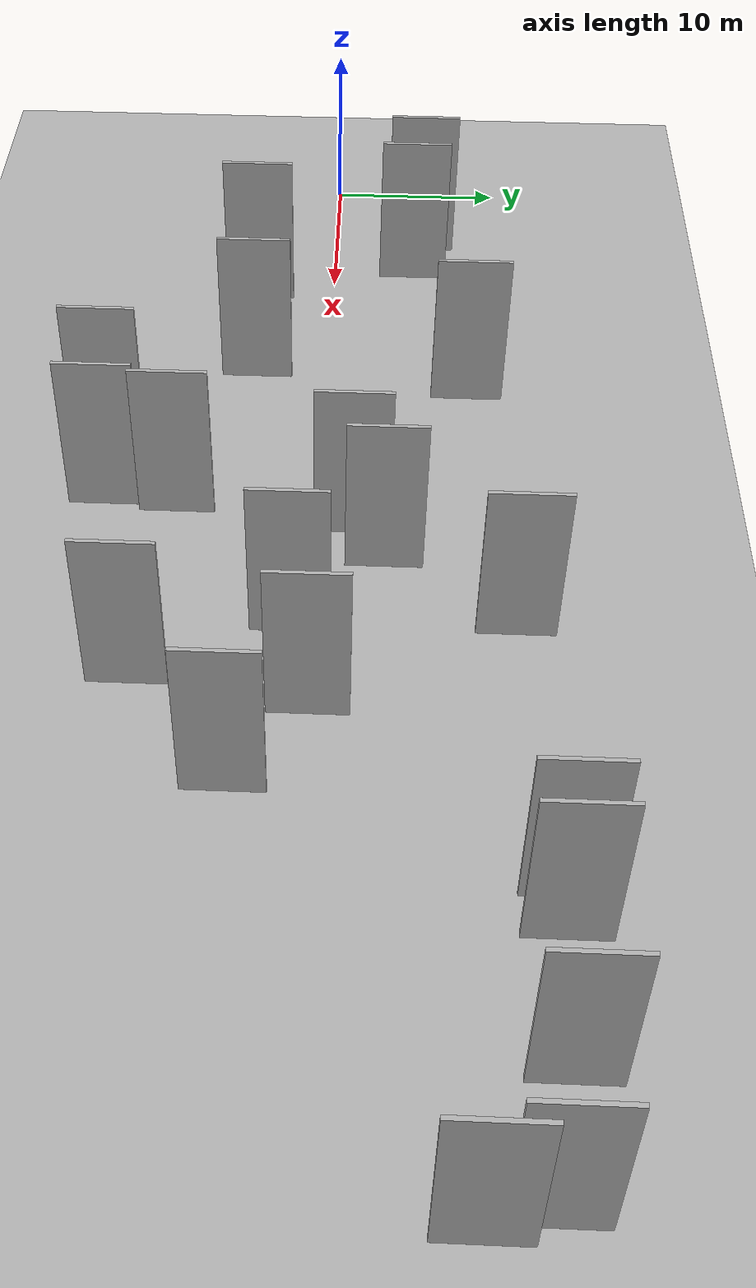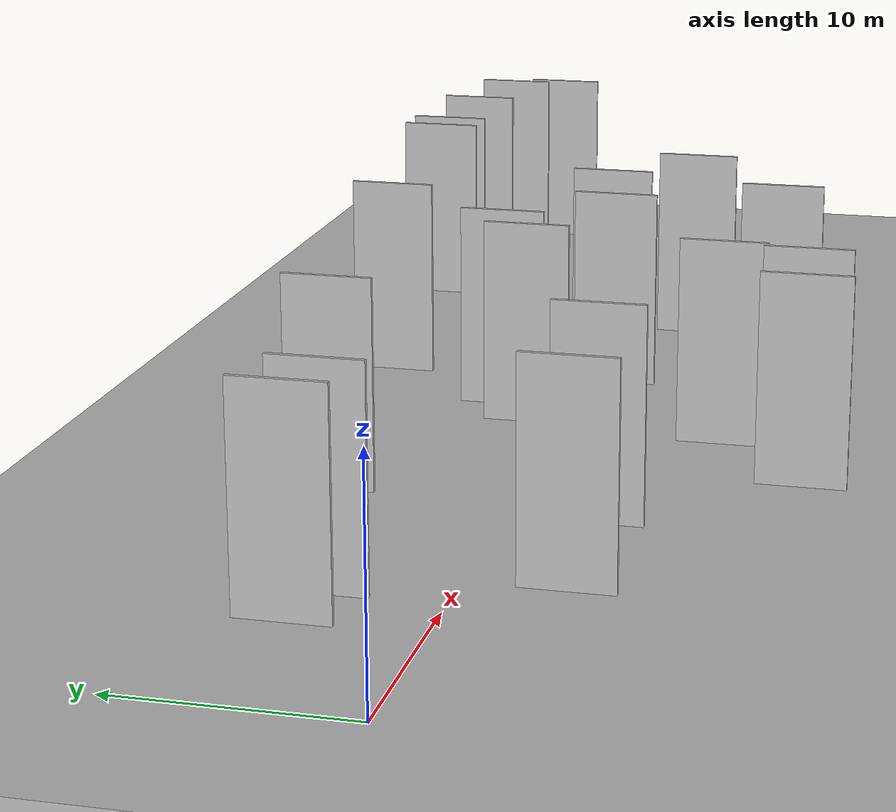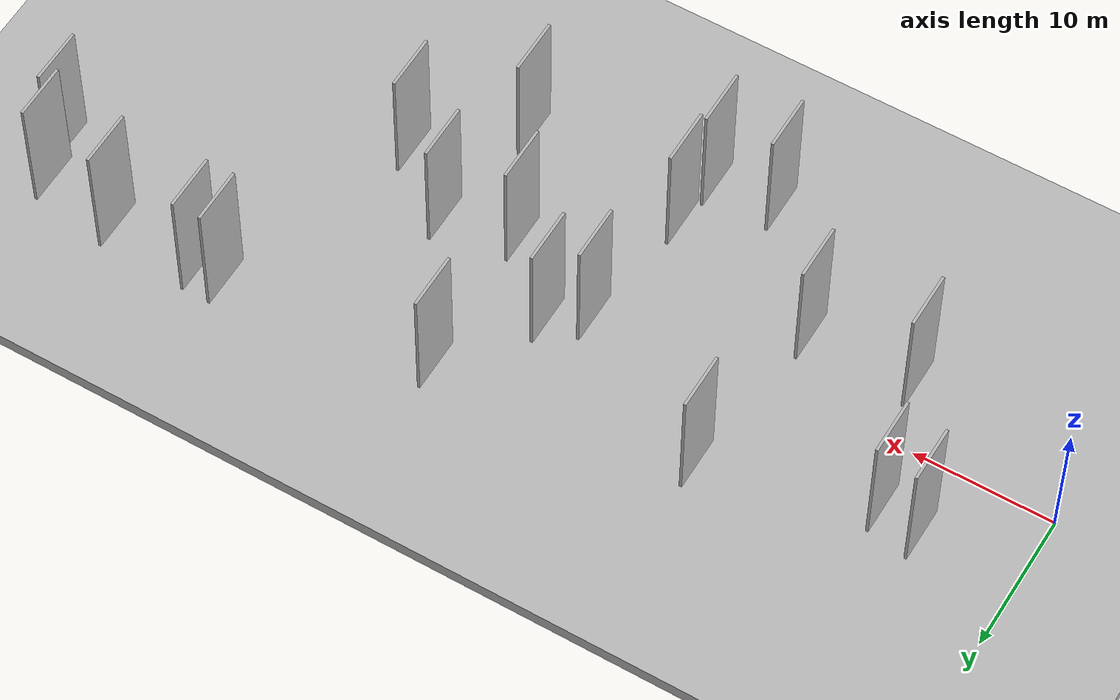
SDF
<?xml version="1.0" encoding="utf-8"?>

<sdf version="1.6">

   <world name="default">

      <gui fullscreen="0">

         <camera name="user_camera">

            <pose>-15 0 4.57585 0 0 0</pose>

            <view_controller>orbit</view_controller>

         </camera>

      </gui>

      <scene>

         <sky>

           <clouds>

             <speed>12</speed>

           </clouds>

         </sky>

         <ambient>0.4 0.4 0.4 1</ambient>

         <background>0.7 0.7 0.7 1</background>

         <shadows>1</shadows>

      </scene>

      <gravity>0 0 -9.8066</gravity>

      <magnetic_field>6e-06 2.3e-05 -4.2e-05</magnetic_field>

      <physics default="0" name="default_physics" type="ode">

         <ode>

            <solver>

               <type>quick</type>

               <iters>10</iters>

               <sor>1.0</sor>

               <use_dynamic_moi_rescaling>0</use_dynamic_moi_rescaling>

            </solver>

            <constraints>

               <cfm>0</cfm>

               <erp>0.2</erp>

               <contact_max_correcting_vel>100</contact_max_correcting_vel>

               <contact_surface_layer>0.001</contact_surface_layer>

            </constraints>

         </ode>

         <max_step_size>0.004</max_step_size>

         <real_time_factor>1</real_time_factor>

         <real_time_update_rate>250</real_time_update_rate>

      </physics>

      <light name="sun" type="directional">

         <cast_shadows>1</cast_shadows>

         <pose>0 0 10 0 0 0</pose>

         <diffuse>0.8 0.8 0.8 1</diffuse>

         <specular>0.2 0.2 0.2 1</specular>

         <attenuation>

            <range>1000</range>

            <constant>0.9</constant>

            <linear>0.01</linear>

            <quadratic>0.001</quadratic>

         </attenuation>

         <direction>-0.5 0.1 -0.9</direction>

      </light>

      <include>

         <name>ground_plane_1</name>

         <uri>model://HANNAS_ground_plane</uri>

         <pose>0 0 0  0 0 0</pose>

      </include>

      <include>

         <name>ground_plane_2</name>

         <uri>model://HANNAS_ground_plane</uri>

         <pose>100 0 0  0 0 0</pose>

      </include>

      <model name="HANNAS_wall_1">

         <static>1</static>

         <pose frame="">39.3201 -1.1113 0.0 0.000000 0.000000 1.570796</pose>

         <link name="link">

            <pose frame="">0 0 5.00 0 0 0</pose>

            <collision name="collision">

               <geometry>

                  <box>

                     <size>4.00 0.2 10.00</size>

                  </box>

               </geometry>

               <max_contacts>10</max_contacts>

               <surface>

                  <contact>

                     <ode/>

                  </contact>

                  <bounce/>

                  <friction>

                     <torsional>

                        <ode/>

                     </torsional>

                     <ode/>

                  </friction>

               </surface>

            </collision>

            <visual name="visual">

               <cast_shadows>0</cast_shadows>

               <geometry>

                  <box>

                     <size>4.00 0.2 10.00</size>

                  </box>

               </geometry>

               <material>

                  <script>

                     <uri>model://HANNAS_wall/materials/scripts</uri>

                     <uri>model://HANNAS_wall/materials/textures</uri>

                     <name>vrc/HANNAS_wall</name>

                  </script>

               </material>

            </visual>

            <self_collide>0</self_collide>

            <enable_wind>0</enable_wind>

            <kinematic>0</kinematic>

         </link>

      </model>

      <model name="HANNAS_wall_2">

         <static>1</static>

         <pose frame="">21.1758 7.9004 0.0 0.000000 0.000000 1.570796</pose>

         <link name="link">

            <pose frame="">0 0 5.00 0 0 0</pose>

            <collision name="collision">

               <geometry>

                  <box>

                     <size>4.00 0.2 10.00</size>

                  </box>

               </geometry>

               <max_contacts>10</max_contacts>

               <surface>

                  <contact>

                     <ode/>

                  </contact>

                  <bounce/>

                  <friction>

                     <torsional>

                        <ode/>

                     </torsional>

                     <ode/>

                  </friction>

               </surface>

            </collision>

            <visual name="visual">

               <cast_shadows>0</cast_shadows>

               <geometry>

                  <box>

                     <size>4.00 0.2 10.00</size>

                  </box>

               </geometry>

               <material>

                  <script>

                     <uri>model://HANNAS_wall/materials/scripts</uri>

                     <uri>model://HANNAS_wall/materials/textures</uri>

                     <name>vrc/HANNAS_wall</name>

                  </script>

               </material>

            </visual>

            <self_collide>0</self_collide>

            <enable_wind>0</enable_wind>

            <kinematic>0</kinematic>

         </link>

      </model>

      <model name="HANNAS_wall_3">

         <static>1</static>

         <pose frame="">34.6801 3.4455 0.0 0.000000 0.000000 1.570796</pose>

         <link name="link">

            <pose frame="">0 0 5.00 0 0 0</pose>

            <collision name="collision">

               <geometry>

                  <box>

                     <size>4.00 0.2 10.00</size>

                  </box>

               </geometry>

               <max_contacts>10</max_contacts>

               <surface>

                  <contact>

                     <ode/>

                  </contact>

                  <bounce/>

                  <friction>

                     <torsional>

                        <ode/>

                     </torsional>

                     <ode/>

                  </friction>

               </surface>

            </collision>

            <visual name="visual">

               <cast_shadows>0</cast_shadows>

               <geometry>

                  <box>

                     <size>4.00 0.2 10.00</size>

                  </box>

               </geometry>

               <material>

                  <script>

                     <uri>model://HANNAS_wall/materials/scripts</uri>

                     <uri>model://HANNAS_wall/materials/textures</uri>

                     <name>vrc/HANNAS_wall</name>

                  </script>

               </material>

            </visual>

            <self_collide>0</self_collide>

            <enable_wind>0</enable_wind>

            <kinematic>0</kinematic>

         </link>

      </model>

      <model name="HANNAS_wall_4">

         <static>1</static>

         <pose frame="">42.9795 -8.7372 0.0 0.000000 0.000000 1.570796</pose>

         <link name="link">

            <pose frame="">0 0 5.00 0 0 0</pose>

            <collision name="collision">

               <geometry>

                  <box>

                     <size>4.00 0.2 10.00</size>

                  </box>

               </geometry>

               <max_contacts>10</max_contacts>

               <surface>

                  <contact>

                     <ode/>

                  </contact>

                  <bounce/>

                  <friction>

                     <torsional>

                        <ode/>

                     </torsional>

                     <ode/>

                  </friction>

               </surface>

            </collision>

            <visual name="visual">

               <cast_shadows>0</cast_shadows>

               <geometry>

                  <box>

                     <size>4.00 0.2 10.00</size>

                  </box>

               </geometry>

               <material>

                  <script>

                     <uri>model://HANNAS_wall/materials/scripts</uri>

                     <uri>model://HANNAS_wall/materials/textures</uri>

                     <name>vrc/HANNAS_wall</name>

                  </script>

               </material>

            </visual>

            <self_collide>0</self_collide>

            <enable_wind>0</enable_wind>

            <kinematic>0</kinematic>

         </link>

      </model>

      <model name="HANNAS_wall_5">

         <static>1</static>

         <pose frame="">19.6572 -4.1081 0.0 0.000000 0.000000 1.570796</pose>

         <link name="link">

            <pose frame="">0 0 5.00 0 0 0</pose>

            <collision name="collision">

               <geometry>

                  <box>

                     <size>4.00 0.2 10.00</size>

                  </box>

               </geometry>

               <max_contacts>10</max_contacts>

               <surface>

                  <contact>

                     <ode/>

                  </contact>

                  <bounce/>

                  <friction>

                     <torsional>

                        <ode/>

                     </torsional>

                     <ode/>

                  </friction>

               </surface>

            </collision>

            <visual name="visual">

               <cast_shadows>0</cast_shadows>

               <geometry>

                  <box>

                     <size>4.00 0.2 10.00</size>

                  </box>

               </geometry>

               <material>

                  <script>

                     <uri>model://HANNAS_wall/materials/scripts</uri>

                     <uri>model://HANNAS_wall/materials/textures</uri>

                     <name>vrc/HANNAS_wall</name>

                  </script>

               </material>

            </visual>

            <self_collide>0</self_collide>

            <enable_wind>0</enable_wind>

            <kinematic>0</kinematic>

         </link>

      </model>

      <model name="HANNAS_wall_6">

         <static>1</static>

         <pose frame="">6.6770 5.2937 0.0 0.000000 0.000000 1.570796</pose>

         <link name="link">

            <pose frame="">0 0 5.00 0 0 0</pose>

            <collision name="collision">

               <geometry>

                  <box>

                     <size>4.00 0.2 10.00</size>

                  </box>

               </geometry>

               <max_contacts>10</max_contacts>

               <surface>

                  <contact>

                     <ode/>

                  </contact>

                  <bounce/>

                  <friction>

                     <torsional>

                        <ode/>

                     </torsional>

                     <ode/>

                  </friction>

               </surface>

            </collision>

            <visual name="visual">

               <cast_shadows>0</cast_shadows>

               <geometry>

                  <box>

                     <size>4.00 0.2 10.00</size>

                  </box>

               </geometry>

               <material>

                  <script>

                     <uri>model://HANNAS_wall/materials/scripts</uri>

                     <uri>model://HANNAS_wall/materials/textures</uri>

                     <name>vrc/HANNAS_wall</name>

                  </script>

               </material>

            </visual>

            <self_collide>0</self_collide>

            <enable_wind>0</enable_wind>

            <kinematic>0</kinematic>

         </link>

      </model>

      <model name="HANNAS_wall_7">

         <static>1</static>

         <pose frame="">56.0255 11.4778 0.0 0.000000 0.000000 1.570796</pose>

         <link name="link">

            <pose frame="">0 0 5.00 0 0 0</pose>

            <collision name="collision">

               <geometry>

                  <box>

                     <size>4.00 0.2 10.00</size>

                  </box>

               </geometry>

               <max_contacts>10</max_contacts>

               <surface>

                  <contact>

                     <ode/>

                  </contact>

                  <bounce/>

                  <friction>

                     <torsional>

                        <ode/>

                     </torsional>

                     <ode/>

                  </friction>

               </surface>

            </collision>

            <visual name="visual">

               <cast_shadows>0</cast_shadows>

               <geometry>

                  <box>

                     <size>4.00 0.2 10.00</size>

                  </box>

               </geometry>

               <material>

                  <script>

                     <uri>model://HANNAS_wall/materials/scripts</uri>

                     <uri>model://HANNAS_wall/materials/textures</uri>

                     <name>vrc/HANNAS_wall</name>

                  </script>

               </material>

            </visual>

            <self_collide>0</self_collide>

            <enable_wind>0</enable_wind>

            <kinematic>0</kinematic>

         </link>

      </model>

      <model name="HANNAS_wall_8">

         <static>1</static>

         <pose frame="">9.6455 4.7786 0.0 0.000000 0.000000 1.570796</pose>

         <link name="link">

            <pose frame="">0 0 5.00 0 0 0</pose>

            <collision name="collision">

               <geometry>

                  <box>

                     <size>4.00 0.2 10.00</size>

                  </box>

               </geometry>

               <max_contacts>10</max_contacts>

               <surface>

                  <contact>

                     <ode/>

                  </contact>

                  <bounce/>

                  <friction>

                     <torsional>

                        <ode/>

                     </torsional>

                     <ode/>

                  </friction>

               </surface>

            </collision>

            <visual name="visual">

               <cast_shadows>0</cast_shadows>

               <geometry>

                  <box>

                     <size>4.00 0.2 10.00</size>

                  </box>

               </geometry>

               <material>

                  <script>

                     <uri>model://HANNAS_wall/materials/scripts</uri>

                     <uri>model://HANNAS_wall/materials/textures</uri>

                     <name>vrc/HANNAS_wall</name>

                  </script>

               </material>

            </visual>

            <self_collide>0</self_collide>

            <enable_wind>0</enable_wind>

            <kinematic>0</kinematic>

         </link>

      </model>

      <model name="HANNAS_wall_9">

         <static>1</static>

         <pose frame="">12.0997 -4.4254 0.0 0.000000 0.000000 1.570796</pose>

         <link name="link">

            <pose frame="">0 0 5.00 0 0 0</pose>

            <collision name="collision">

               <geometry>

                  <box>

                     <size>4.00 0.2 10.00</size>

                  </box>

               </geometry>

               <max_contacts>10</max_contacts>

               <surface>

                  <contact>

                     <ode/>

                  </contact>

                  <bounce/>

                  <friction>

                     <torsional>

                        <ode/>

                     </torsional>

                     <ode/>

                  </friction>

               </surface>

            </collision>

            <visual name="visual">

               <cast_shadows>0</cast_shadows>

               <geometry>

                  <box>

                     <size>4.00 0.2 10.00</size>

                  </box>

               </geometry>

               <material>

                  <script>

                     <uri>model://HANNAS_wall/materials/scripts</uri>

                     <uri>model://HANNAS_wall/materials/textures</uri>

                     <name>vrc/HANNAS_wall</name>

                  </script>

               </material>

            </visual>

            <self_collide>0</self_collide>

            <enable_wind>0</enable_wind>

            <kinematic>0</kinematic>

         </link>

      </model>

      <model name="HANNAS_wall_10">

         <static>1</static>

         <pose frame="">30.6636 -11.3826 0.0 0.000000 0.000000 1.570796</pose>

         <link name="link">

            <pose frame="">0 0 5.00 0 0 0</pose>

            <collision name="collision">

               <geometry>

                  <box>

                     <size>4.00 0.2 10.00</size>

                  </box>

               </geometry>

               <max_contacts>10</max_contacts>

               <surface>

                  <contact>

                     <ode/>

                  </contact>

                  <bounce/>

                  <friction>

                     <torsional>

                        <ode/>

                     </torsional>

                     <ode/>

                  </friction>

               </surface>

            </collision>

            <visual name="visual">

               <cast_shadows>0</cast_shadows>

               <geometry>

                  <box>

                     <size>4.00 0.2 10.00</size>

                  </box>

               </geometry>

               <material>

                  <script>

                     <uri>model://HANNAS_wall/materials/scripts</uri>

                     <uri>model://HANNAS_wall/materials/textures</uri>

                     <name>vrc/HANNAS_wall</name>

                  </script>

               </material>

            </visual>

            <self_collide>0</self_collide>

            <enable_wind>0</enable_wind>

            <kinematic>0</kinematic>

         </link>

      </model>

      <model name="HANNAS_wall_11">

         <static>1</static>

         <pose frame="">44.4753 0.0213 0.0 0.000000 0.000000 1.570796</pose>

         <link name="link">

            <pose frame="">0 0 5.00 0 0 0</pose>

            <collision name="collision">

               <geometry>

                  <box>

                     <size>4.00 0.2 10.00</size>

                  </box>

               </geometry>

               <max_contacts>10</max_contacts>

               <surface>

                  <contact>

                     <ode/>

                  </contact>

                  <bounce/>

                  <friction>

                     <torsional>

                        <ode/>

                     </torsional>

                     <ode/>

                  </friction>

               </surface>

            </collision>

            <visual name="visual">

               <cast_shadows>0</cast_shadows>

               <geometry>

                  <box>

                     <size>4.00 0.2 10.00</size>

                  </box>

               </geometry>

               <material>

                  <script>

                     <uri>model://HANNAS_wall/materials/scripts</uri>

                     <uri>model://HANNAS_wall/materials/textures</uri>

                     <name>vrc/HANNAS_wall</name>

                  </script>

               </material>

            </visual>

            <self_collide>0</self_collide>

            <enable_wind>0</enable_wind>

            <kinematic>0</kinematic>

         </link>

      </model>

      <model name="HANNAS_wall_12">

         <static>1</static>

         <pose frame="">26.1007 -11.8129 0.0 0.000000 0.000000 1.570796</pose>

         <link name="link">

            <pose frame="">0 0 5.00 0 0 0</pose>

            <collision name="collision">

               <geometry>

                  <box>

                     <size>4.00 0.2 10.00</size>

                  </box>

               </geometry>

               <max_contacts>10</max_contacts>

               <surface>

                  <contact>

                     <ode/>

                  </contact>

                  <bounce/>

                  <friction>

                     <torsional>

                        <ode/>

                     </torsional>

                     <ode/>

                  </friction>

               </surface>

            </collision>

            <visual name="visual">

               <cast_shadows>0</cast_shadows>

               <geometry>

                  <box>

                     <size>4.00 0.2 10.00</size>

                  </box>

               </geometry>

               <material>

                  <script>

                     <uri>model://HANNAS_wall/materials/scripts</uri>

                     <uri>model://HANNAS_wall/materials/textures</uri>

                     <name>vrc/HANNAS_wall</name>

                  </script>

               </material>

            </visual>

            <self_collide>0</self_collide>

            <enable_wind>0</enable_wind>

            <kinematic>0</kinematic>

         </link>

      </model>

      <model name="HANNAS_wall_13">

         <static>1</static>

         <pose frame="">49.0920 -3.5994 0.0 0.000000 0.000000 1.570796</pose>

         <link name="link">

            <pose frame="">0 0 5.00 0 0 0</pose>

            <collision name="collision">

               <geometry>

                  <box>

                     <size>4.00 0.2 10.00</size>

                  </box>

               </geometry>

               <max_contacts>10</max_contacts>

               <surface>

                  <contact>

                     <ode/>

                  </contact>

                  <bounce/>

                  <friction>

                     <torsional>

                        <ode/>

                     </torsional>

                     <ode/>

                  </friction>

               </surface>

            </collision>

            <visual name="visual">

               <cast_shadows>0</cast_shadows>

               <geometry>

                  <box>

                     <size>4.00 0.2 10.00</size>

                  </box>

               </geometry>

               <material>

                  <script>

                     <uri>model://HANNAS_wall/materials/scripts</uri>

                     <uri>model://HANNAS_wall/materials/textures</uri>

                     <name>vrc/HANNAS_wall</name>

                  </script>

               </material>

            </visual>

            <self_collide>0</self_collide>

            <enable_wind>0</enable_wind>

            <kinematic>0</kinematic>

         </link>

      </model>

      <model name="HANNAS_wall_14">

         <static>1</static>

         <pose frame="">68.7990 7.5972 0.0 0.000000 0.000000 1.570796</pose>

         <link name="link">

            <pose frame="">0 0 5.00 0 0 0</pose>

            <collision name="collision">

               <geometry>

                  <box>

                     <size>4.00 0.2 10.00</size>

                  </box>

               </geometry>

               <max_contacts>10</max_contacts>

               <surface>

                  <contact>

                     <ode/>

                  </contact>

                  <bounce/>

                  <friction>

                     <torsional>

                        <ode/>

                     </torsional>

                     <ode/>

                  </friction>

               </surface>

            </collision>

            <visual name="visual">

               <cast_shadows>0</cast_shadows>

               <geometry>

                  <box>

                     <size>4.00 0.2 10.00</size>

                  </box>

               </geometry>

               <material>

                  <script>

                     <uri>model://HANNAS_wall/materials/scripts</uri>

                     <uri>model://HANNAS_wall/materials/textures</uri>

                     <name>vrc/HANNAS_wall</name>

                  </script>

               </material>

            </visual>

            <self_collide>0</self_collide>

            <enable_wind>0</enable_wind>

            <kinematic>0</kinematic>

         </link>

      </model>

      <model name="HANNAS_wall_15">

         <static>1</static>

         <pose frame="">32.2501 1.7436 0.0 0.000000 0.000000 1.570796</pose>

         <link name="link">

            <pose frame="">0 0 5.00 0 0 0</pose>

            <collision name="collision">

               <geometry>

                  <box>

                     <size>4.00 0.2 10.00</size>

                  </box>

               </geometry>

               <max_contacts>10</max_contacts>

               <surface>

                  <contact>

                     <ode/>

                  </contact>

                  <bounce/>

                  <friction>

                     <torsional>

                        <ode/>

                     </torsional>

                     <ode/>

                  </friction>

               </surface>

            </collision>

            <visual name="visual">

               <cast_shadows>0</cast_shadows>

               <geometry>

                  <box>

                     <size>4.00 0.2 10.00</size>

                  </box>

               </geometry>

               <material>

                  <script>

                     <uri>model://HANNAS_wall/materials/scripts</uri>

                     <uri>model://HANNAS_wall/materials/textures</uri>

                     <name>vrc/HANNAS_wall</name>

                  </script>

               </material>

            </visual>

            <self_collide>0</self_collide>

            <enable_wind>0</enable_wind>

            <kinematic>0</kinematic>

         </link>

      </model>

      <model name="HANNAS_wall_16">

         <static>1</static>

         <pose frame="">68.0790 10.4414 0.0 0.000000 0.000000 1.570796</pose>

         <link name="link">

            <pose frame="">0 0 5.00 0 0 0</pose>

            <collision name="collision">

               <geometry>

                  <box>

                     <size>4.00 0.2 10.00</size>

                  </box>

               </geometry>

               <max_contacts>10</max_contacts>

               <surface>

                  <contact>

                     <ode/>

                  </contact>

                  <bounce/>

                  <friction>

                     <torsional>

                        <ode/>

                     </torsional>

                     <ode/>

                  </friction>

               </surface>

            </collision>

            <visual name="visual">

               <cast_shadows>0</cast_shadows>

               <geometry>

                  <box>

                     <size>4.00 0.2 10.00</size>

                  </box>

               </geometry>

               <material>

                  <script>

                     <uri>model://HANNAS_wall/materials/scripts</uri>

                     <uri>model://HANNAS_wall/materials/textures</uri>

                     <name>vrc/HANNAS_wall</name>

                  </script>

               </material>

            </visual>

            <self_collide>0</self_collide>

            <enable_wind>0</enable_wind>

            <kinematic>0</kinematic>

         </link>

      </model>

      <model name="HANNAS_wall_17">

         <static>1</static>

         <pose frame="">39.0511 10.0274 0.0 0.000000 0.000000 1.570796</pose>

         <link name="link">

            <pose frame="">0 0 5.00 0 0 0</pose>

            <collision name="collision">

               <geometry>

                  <box>

                     <size>4.00 0.2 10.00</size>

                  </box>

               </geometry>

               <max_contacts>10</max_contacts>

               <surface>

                  <contact>

                     <ode/>

                  </contact>

                  <bounce/>

                  <friction>

                     <torsional>

                        <ode/>

                     </torsional>

                     <ode/>

                  </friction>

               </surface>

            </collision>

            <visual name="visual">

               <cast_shadows>0</cast_shadows>

               <geometry>

                  <box>

                     <size>4.00 0.2 10.00</size>

                  </box>

               </geometry>

               <material>

                  <script>

                     <uri>model://HANNAS_wall/materials/scripts</uri>

                     <uri>model://HANNAS_wall/materials/textures</uri>

                     <name>vrc/HANNAS_wall</name>

                  </script>

               </material>

            </visual>

            <self_collide>0</self_collide>

            <enable_wind>0</enable_wind>

            <kinematic>0</kinematic>

         </link>

      </model>

      <model name="HANNAS_wall_18">

         <static>1</static>

         <pose frame="">54.0005 11.4884 0.0 0.000000 0.000000 1.570796</pose>

         <link name="link">

            <pose frame="">0 0 5.00 0 0 0</pose>

            <collision name="collision">

               <geometry>

                  <box>

                     <size>4.00 0.2 10.00</size>

                  </box>

               </geometry>

               <max_contacts>10</max_contacts>

               <surface>

                  <contact>

                     <ode/>

                  </contact>

                  <bounce/>

                  <friction>

                     <torsional>

                        <ode/>

                     </torsional>

                     <ode/>

                  </friction>

               </surface>

            </collision>

            <visual name="visual">

               <cast_shadows>0</cast_shadows>

               <geometry>

                  <box>

                     <size>4.00 0.2 10.00</size>

                  </box>

               </geometry>

               <material>

                  <script>

                     <uri>model://HANNAS_wall/materials/scripts</uri>

                     <uri>model://HANNAS_wall/materials/textures</uri>

                     <name>vrc/HANNAS_wall</name>

                  </script>

               </material>

            </visual>

            <self_collide>0</self_collide>

            <enable_wind>0</enable_wind>

            <kinematic>0</kinematic>

         </link>

      </model>

      <model name="HANNAS_wall_19">

         <static>1</static>

         <pose frame="">31.0856 -7.5667 0.0 0.000000 0.000000 1.570796</pose>

         <link name="link">

            <pose frame="">0 0 5.00 0 0 0</pose>

            <collision name="collision">

               <geometry>

                  <box>

                     <size>4.00 0.2 10.00</size>

                  </box>

               </geometry>

               <max_contacts>10</max_contacts>

               <surface>

                  <contact>

                     <ode/>

                  </contact>

                  <bounce/>

                  <friction>

                     <torsional>

                        <ode/>

                     </torsional>

                     <ode/>

                  </friction>

               </surface>

            </collision>

            <visual name="visual">

               <cast_shadows>0</cast_shadows>

               <geometry>

                  <box>

                     <size>4.00 0.2 10.00</size>

                  </box>

               </geometry>

               <material>

                  <script>

                     <uri>model://HANNAS_wall/materials/scripts</uri>

                     <uri>model://HANNAS_wall/materials/textures</uri>

                     <name>vrc/HANNAS_wall</name>

                  </script>

               </material>

            </visual>

            <self_collide>0</self_collide>

            <enable_wind>0</enable_wind>

            <kinematic>0</kinematic>

         </link>

      </model>

      <model name="HANNAS_wall_20">

         <static>1</static>

         <pose frame="">62.4493 11.3669 0.0 0.000000 0.000000 1.570796</pose>

         <link name="link">

            <pose frame="">0 0 5.00 0 0 0</pose>

            <collision name="collision">

               <geometry>

                  <box>

                     <size>4.00 0.2 10.00</size>

                  </box>

               </geometry>

               <max_contacts>10</max_contacts>

               <surface>

                  <contact>

                     <ode/>

                  </contact>

                  <bounce/>

                  <friction>

                     <torsional>

                        <ode/>

                     </torsional>

                     <ode/>

                  </friction>

               </surface>

            </collision>

            <visual name="visual">

               <cast_shadows>0</cast_shadows>

               <geometry>

                  <box>

                     <size>4.00 0.2 10.00</size>

                  </box>

               </geometry>

               <material>

                  <script>

                     <uri>model://HANNAS_wall/materials/scripts</uri>

                     <uri>model://HANNAS_wall/materials/textures</uri>

                     <name>vrc/HANNAS_wall</name>

                  </script>

               </material>

            </visual>

            <self_collide>0</self_collide>

            <enable_wind>0</enable_wind>

            <kinematic>0</kinematic>

         </link>

      </model>

   </world>

</sdf>

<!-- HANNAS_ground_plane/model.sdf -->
<sdf version="1.4">
<model name="HANNAS_ground_plane">
  <static>true</static>
    <link name="link">
      <collision name="collision">
        <geometry>
          <plane>
            <normal>0 0 1</normal>
            <size>1000 1000</size>
          </plane>
        </geometry>
        <surface>
          <friction>
            <ode>
              <mu>100</mu>
              <mu2>50</mu2>
            </ode>
          </friction>
        </surface>
      </collision>
      <visual name="visual">
        <cast_shadows>false</cast_shadows>
        <geometry>
          <plane>
            <normal>0 0 1</normal>
            <size>1000 1000</size>
          </plane>
        </geometry>
        <material>
          <script>
            <uri>model://HANNAS_ground_plane/materials/scripts/HANNAS_ground_plane.material</uri>
	    <uri>model://HANNAS_ground_plane/materials/textures</uri>
            <name>HANNASGroundPlane/Image</name>
          </script>
        </material>
      </visual>
    </link>
  </model>
</sdf>
